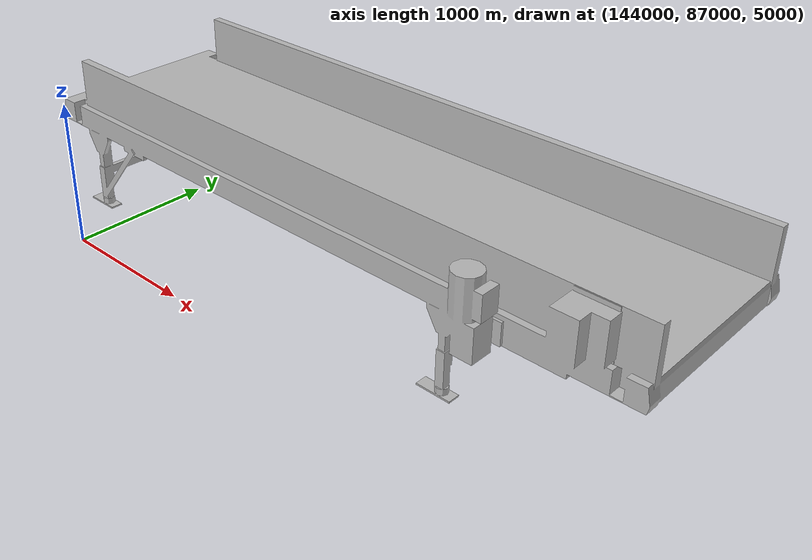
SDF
<?xml version="1.0"?>
<sdf version="1.6">
<model name="bf3000">
  <pose>0 0 0 0 0 0</pose>
  <static>true</static>
  <link name="link">
    <collision name="collision">
        <geometry>
            <mesh>
                <uri>model://bf3000/meshes/BF_3000.stl</uri>
                <scale>1 1 1</scale>
            </mesh>
        </geometry>
    </collision>
    <visual name="visual">
        <geometry>
            <mesh>
                <uri>model://bf3000/meshes/BF_3000.stl</uri>
                <scale>1 1 1</scale>
            </mesh>
        </geometry>
    </visual>
  </link>
</model>
</sdf>
